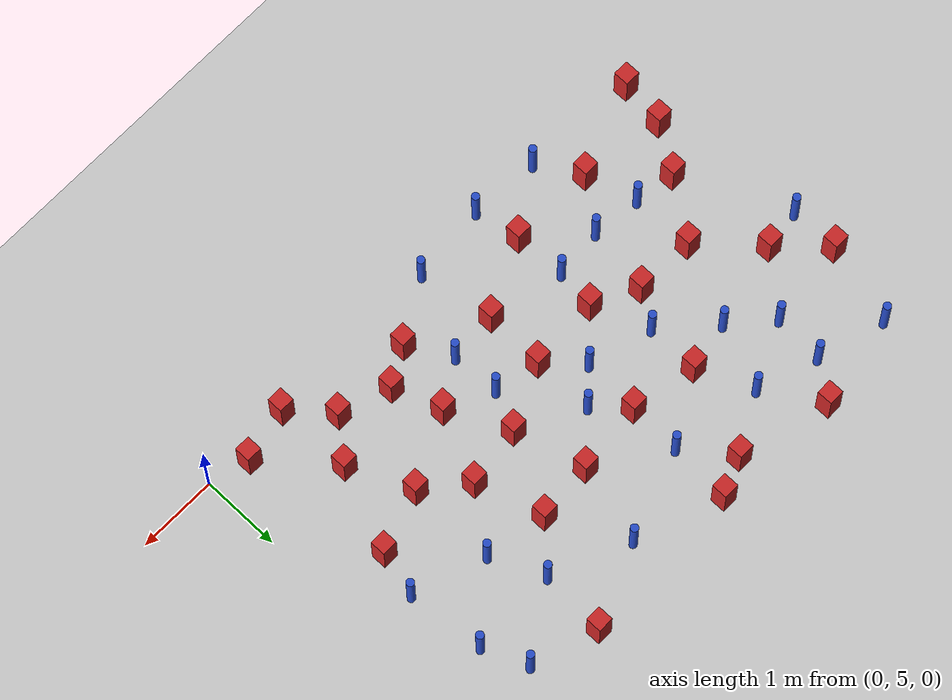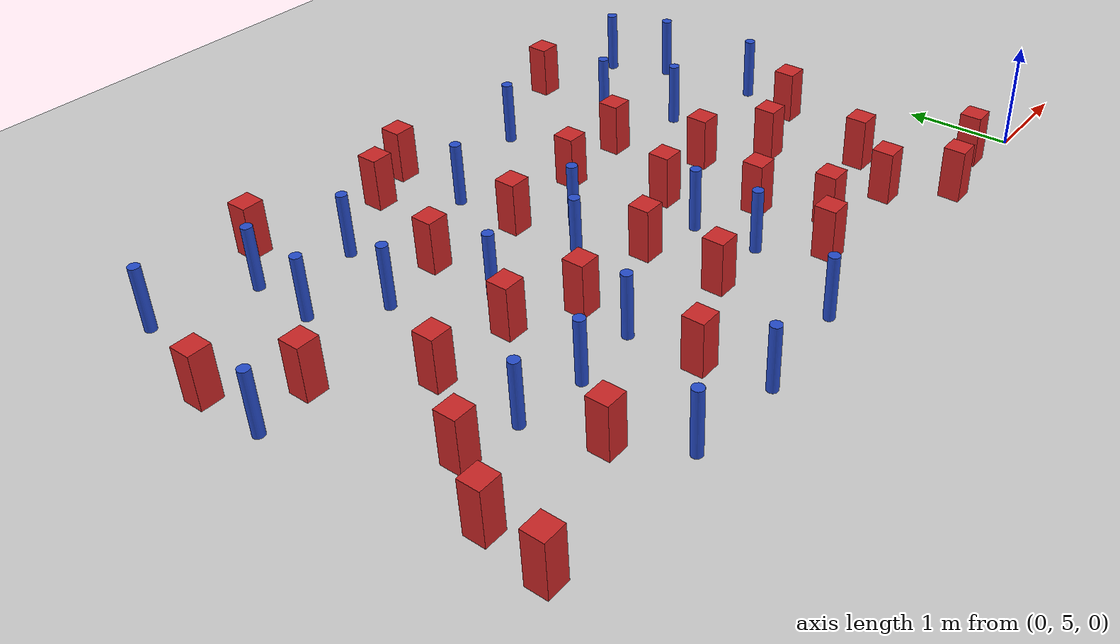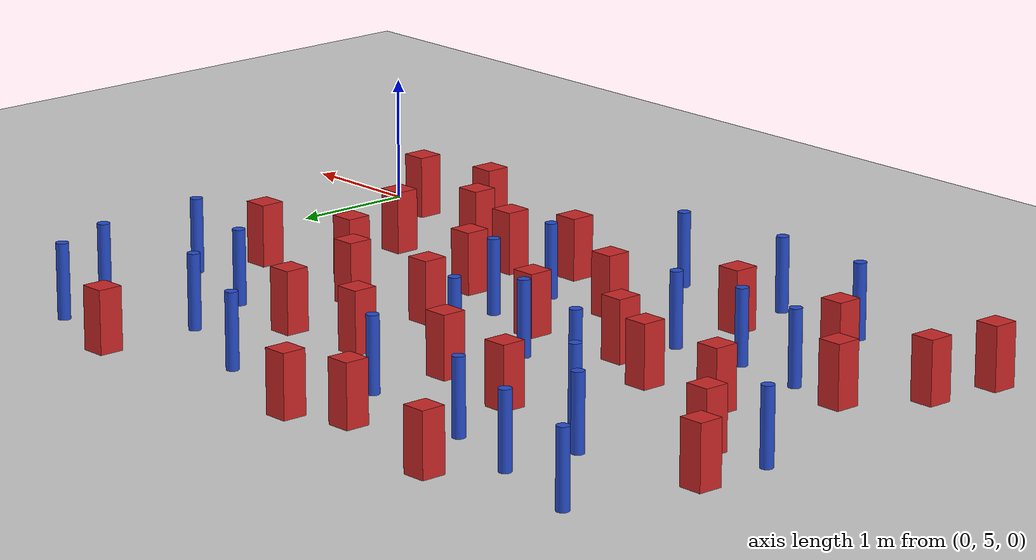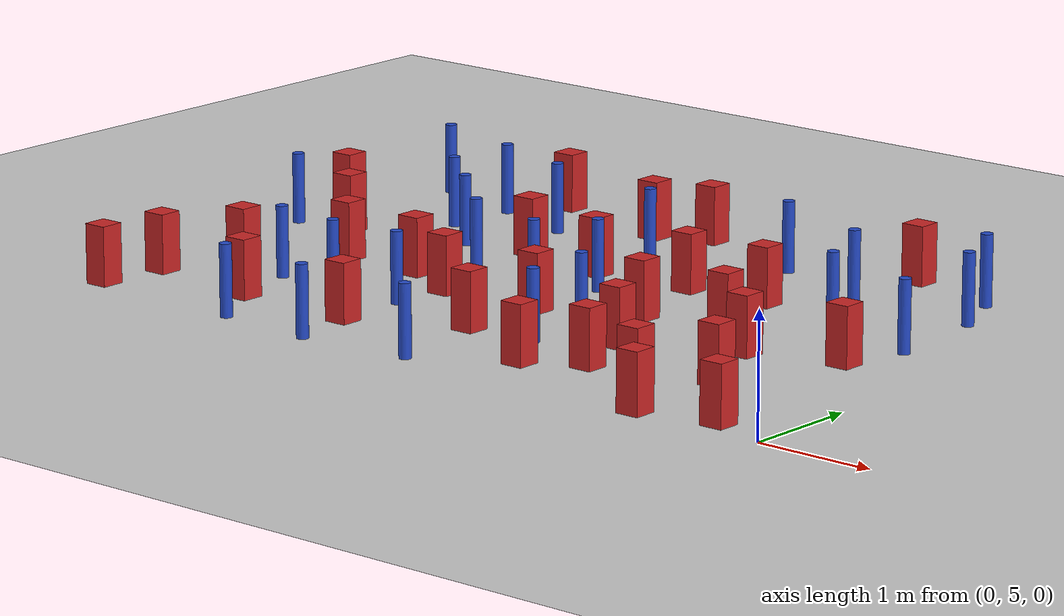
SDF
<sdf version="1.6">
 <world name="default">
  <model name="ground_plane">
   <static>1</static>
   <link name="link">
    <collision name="collision">
     <geometry><plane><normal>0 0 1</normal><size>100 100</size></plane></geometry>
     <surface><friction><ode><mu>100</mu><mu2>50</mu2></ode></friction></surface>
    </collision>
    <visual name="visual">
     <cast_shadows>0</cast_shadows>
     <geometry><plane><normal>0 0 1</normal><size>100 100</size></plane></geometry>
     <material>
      <ambient>1.0 1.0 1.0 1.0</ambient>
      <diffuse>0.8 0.8 0.8 1.0</diffuse>
      <specular>0.01 0.01 0.01 1.000000</specular>
     </material>
    </visual>
   </link>
  </model>
  <model name="square_post_obstacle5">
   <static>true</static>
   <pose>-2.20192147459 5.721006857 -4.36207812815e-07 3.75137919937e-06 9.77721102514e-07 2.47381364184e-05</pose>
   <link name="link">
    <pose>0 0 0.25 0 -0 0</pose>
    <inertial>
     <mass>100</mass>
     <inertia>
      <ixx>0.166667</ixx>
      <ixy>0</ixy>
      <ixz>0</ixz>
      <iyy>0.166667</iyy>
      <iyz>0</iyz>
      <izz>0.166667</izz>
     </inertia>
    </inertial>
    <collision name="collision"><geometry><box><size>.2 .2 .5</size></box></geometry></collision>
    <visual name="visual">
     <geometry><box><size>.2 .2 .5</size></box></geometry>
     <material>
      <script><name>Gazebo/Red</name><uri>file://media/materials/scripts/gazebo.material</uri></script>
     </material>
    </visual>
   </link>
  </model>
  <model name="square_post_obstacle11">
   <static>true</static>
   <pose>-0.495204404261 5.16524390916 -4.36207812815e-07 3.75137919937e-06 9.77721102514e-07 2.47381364184e-05</pose>
   <link name="link">
    <pose>0 0 0.25 0 -0 0</pose>
    <inertial>
     <mass>100</mass>
     <inertia>
      <ixx>0.166667</ixx>
      <ixy>0</ixy>
      <ixz>0</ixz>
      <iyy>0.166667</iyy>
      <iyz>0</iyz>
      <izz>0.166667</izz>
     </inertia>
    </inertial>
    <collision name="collision"><geometry><box><size>.2 .2 .5</size></box></geometry></collision>
    <visual name="visual">
     <geometry><box><size>.2 .2 .5</size></box></geometry>
     <material>
      <script><name>Gazebo/Red</name><uri>file://media/materials/scripts/gazebo.material</uri></script>
     </material>
    </visual>
   </link>
  </model>
  <model name="pole_obstacle16">
   <static>true</static>
   <pose>-3.42183137124 5.0093323636 -3.09024884848e-07 -7.19054271903e-07 -2.11315075193e-07 -1.93935509285e-07</pose>
   <link name="link">
    <pose>0 0 0.3 0 -0 0</pose>
    <inertial>
     <mass>1</mass>
     <inertia><ixx>0.145833</ixx><ixy>0</ixy><ixz>0</ixz><iyy>0.145833</iyy><iyz>0</iyz><izz>0.125</izz></inertia>
    </inertial>
    <collision name="collision">
     <geometry><cylinder><radius>0.05</radius><length>.6</length></cylinder></geometry>
    </collision>
    <visual name="visual">
     <geometry><cylinder><radius>0.05</radius><length>.6</length></cylinder></geometry>
     <material>
      <script><name>Gazebo/Blue</name><uri>file://media/materials/scripts/gazebo.material</uri></script>
     </material>
    </visual>
   </link>
  </model>
  <model name="square_post_obstacle14">
   <static>true</static>
   <pose>-1.17352878662 5.99044738628 -4.36207812815e-07 3.75137919937e-06 9.77721102514e-07 2.47381364184e-05</pose>
   <link name="link">
    <pose>0 0 0.25 0 -0 0</pose>
    <inertial>
     <mass>100</mass>
     <inertia>
      <ixx>0.166667</ixx>
      <ixy>0</ixy>
      <ixz>0</ixz>
      <iyy>0.166667</iyy>
      <iyz>0</iyz>
      <izz>0.166667</izz>
     </inertia>
    </inertial>
    <collision name="collision"><geometry><box><size>.2 .2 .5</size></box></geometry></collision>
    <visual name="visual">
     <geometry><box><size>.2 .2 .5</size></box></geometry>
     <material>
      <script><name>Gazebo/Red</name><uri>file://media/materials/scripts/gazebo.material</uri></script>
     </material>
    </visual>
   </link>
  </model>
  <model name="square_post_obstacle42">
   <static>true</static>
   <pose>-2.29299157943 8.01545349763 -4.36207812815e-07 3.75137919937e-06 9.77721102514e-07 2.47381364184e-05</pose>
   <link name="link">
    <pose>0 0 0.25 0 -0 0</pose>
    <inertial>
     <mass>100</mass>
     <inertia>
      <ixx>0.166667</ixx>
      <ixy>0</ixy>
      <ixz>0</ixz>
      <iyy>0.166667</iyy>
      <iyz>0</iyz>
      <izz>0.166667</izz>
     </inertia>
    </inertial>
    <collision name="collision"><geometry><box><size>.2 .2 .5</size></box></geometry></collision>
    <visual name="visual">
     <geometry><box><size>.2 .2 .5</size></box></geometry>
     <material>
      <script><name>Gazebo/Red</name><uri>file://media/materials/scripts/gazebo.material</uri></script>
     </material>
    </visual>
   </link>
  </model>
  <model name="square_post_obstacle43">
   <static>true</static>
   <pose>-1.75919278025 9.35160729567 -4.36207812815e-07 3.75137919937e-06 9.77721102514e-07 2.47381364184e-05</pose>
   <link name="link">
    <pose>0 0 0.25 0 -0 0</pose>
    <inertial>
     <mass>100</mass>
     <inertia>
      <ixx>0.166667</ixx>
      <ixy>0</ixy>
      <ixz>0</ixz>
      <iyy>0.166667</iyy>
      <iyz>0</iyz>
      <izz>0.166667</izz>
     </inertia>
    </inertial>
    <collision name="collision"><geometry><box><size>.2 .2 .5</size></box></geometry></collision>
    <visual name="visual">
     <geometry><box><size>.2 .2 .5</size></box></geometry>
     <material>
      <script><name>Gazebo/Red</name><uri>file://media/materials/scripts/gazebo.material</uri></script>
     </material>
    </visual>
   </link>
  </model>
  <model name="square_post_obstacle46">
   <static>true</static>
   <pose>-6.40927936074 7.64171627701 -4.36207812815e-07 3.75137919937e-06 9.77721102514e-07 2.47381364184e-05</pose>
   <link name="link">
    <pose>0 0 0.25 0 -0 0</pose>
    <inertial>
     <mass>100</mass>
     <inertia>
      <ixx>0.166667</ixx>
      <ixy>0</ixy>
      <ixz>0</ixz>
      <iyy>0.166667</iyy>
      <iyz>0</iyz>
      <izz>0.166667</izz>
     </inertia>
    </inertial>
    <collision name="collision"><geometry><box><size>.2 .2 .5</size></box></geometry></collision>
    <visual name="visual">
     <geometry><box><size>.2 .2 .5</size></box></geometry>
     <material>
      <script><name>Gazebo/Red</name><uri>file://media/materials/scripts/gazebo.material</uri></script>
     </material>
    </visual>
   </link>
  </model>
  <model name="pole_obstacle62">
   <static>true</static>
   <pose>-0.603730077814 7.57928472812 -3.09024884793e-07 -7.19054271912e-07 -2.11315075129e-07 -1.93935509261e-07</pose>
   <link name="link">
    <pose>0 0 0.3 0 -0 0</pose>
    <inertial>
     <mass>1</mass>
     <inertia><ixx>0.145833</ixx><ixy>0</ixy><ixz>0</ixz><iyy>0.145833</iyy><iyz>0</iyz><izz>0.125</izz></inertia>
    </inertial>
    <collision name="collision">
     <geometry><cylinder><radius>0.05</radius><length>.6</length></cylinder></geometry>
    </collision>
    <visual name="visual">
     <geometry><cylinder><radius>0.05</radius><length>.6</length></cylinder></geometry>
     <material>
      <script><name>Gazebo/Blue</name><uri>file://media/materials/scripts/gazebo.material</uri></script>
     </material>
    </visual>
   </link>
  </model>
  <model name="square_post_obstacle48">
   <static>true</static>
   <pose>-2.03172773621 7.1834010744 -4.36207812815e-07 3.75137919937e-06 9.77721102514e-07 2.47381364184e-05</pose>
   <link name="link">
    <pose>0 0 0.25 0 -0 0</pose>
    <inertial>
     <mass>100</mass>
     <inertia>
      <ixx>0.166667</ixx>
      <ixy>0</ixy>
      <ixz>0</ixz>
      <iyy>0.166667</iyy>
      <iyz>0</iyz>
      <izz>0.166667</izz>
     </inertia>
    </inertial>
    <collision name="collision"><geometry><box><size>.2 .2 .5</size></box></geometry></collision>
    <visual name="visual">
     <geometry><box><size>.2 .2 .5</size></box></geometry>
     <material>
      <script><name>Gazebo/Red</name><uri>file://media/materials/scripts/gazebo.material</uri></script>
     </material>
    </visual>
   </link>
  </model>
  <model name="pole_obstacle65">
   <static>true</static>
   <pose>-3.88668342718 8.53145276634 -3.09024884848e-07 -7.19054271902e-07 -2.11315075199e-07 -1.93935509286e-07</pose>
   <link name="link">
    <pose>0 0 0.3 0 -0 0</pose>
    <inertial>
     <mass>1</mass>
     <inertia><ixx>0.145833</ixx><ixy>0</ixy><ixz>0</ixz><iyy>0.145833</iyy><iyz>0</iyz><izz>0.125</izz></inertia>
    </inertial>
    <collision name="collision">
     <geometry><cylinder><radius>0.05</radius><length>.6</length></cylinder></geometry>
    </collision>
    <visual name="visual">
     <geometry><cylinder><radius>0.05</radius><length>.6</length></cylinder></geometry>
     <material>
      <script><name>Gazebo/Blue</name><uri>file://media/materials/scripts/gazebo.material</uri></script>
     </material>
    </visual>
   </link>
  </model>
  <model name="pole_obstacle68">
   <static>true</static>
   <pose>-5.28599103161 4.98297064416 -3.09024884793e-07 -7.19054271911e-07 -2.1131507516e-07 -1.93935509277e-07</pose>
   <link name="link">
    <pose>0 0 0.3 0 -0 0</pose>
    <inertial>
     <mass>1</mass>
     <inertia><ixx>0.145833</ixx><ixy>0</ixy><ixz>0</ixz><iyy>0.145833</iyy><iyz>0</iyz><izz>0.125</izz></inertia>
    </inertial>
    <collision name="collision">
     <geometry><cylinder><radius>0.05</radius><length>.6</length></cylinder></geometry>
    </collision>
    <visual name="visual">
     <geometry><cylinder><radius>0.05</radius><length>.6</length></cylinder></geometry>
     <material>
      <script><name>Gazebo/Blue</name><uri>file://media/materials/scripts/gazebo.material</uri></script>
     </material>
    </visual>
   </link>
  </model>
  <model name="pole_obstacle71">
   <static>true</static>
   <pose>-1.79948838187 8.53098271979 -3.09024884793e-07 -7.19054271912e-07 -2.1131507515e-07 -1.93935509273e-07</pose>
   <link name="link">
    <pose>0 0 0.3 0 -0 0</pose>
    <inertial>
     <mass>1</mass>
     <inertia><ixx>0.145833</ixx><ixy>0</ixy><ixz>0</ixz><iyy>0.145833</iyy><iyz>0</iyz><izz>0.125</izz></inertia>
    </inertial>
    <collision name="collision">
     <geometry><cylinder><radius>0.05</radius><length>.6</length></cylinder></geometry>
    </collision>
    <visual name="visual">
     <geometry><cylinder><radius>0.05</radius><length>.6</length></cylinder></geometry>
     <material>
      <script><name>Gazebo/Blue</name><uri>file://media/materials/scripts/gazebo.material</uri></script>
     </material>
    </visual>
   </link>
  </model>
  <model name="pole_obstacle80">
   <static>true</static>
   <pose>-1.51343600492 7.87549931744 -3.09024884793e-07 -7.19054271912e-07 -2.11315075134e-07 -1.93935509265e-07</pose>
   <link name="link">
    <pose>0 0 0.3 0 -0 0</pose>
    <inertial>
     <mass>1</mass>
     <inertia><ixx>0.145833</ixx><ixy>0</ixy><ixz>0</ixz><iyy>0.145833</iyy><iyz>0</iyz><izz>0.125</izz></inertia>
    </inertial>
    <collision name="collision">
     <geometry><cylinder><radius>0.05</radius><length>.6</length></cylinder></geometry>
    </collision>
    <visual name="visual">
     <geometry><cylinder><radius>0.05</radius><length>.6</length></cylinder></geometry>
     <material>
      <script><name>Gazebo/Blue</name><uri>file://media/materials/scripts/gazebo.material</uri></script>
     </material>
    </visual>
   </link>
  </model>
  <model name="square_post_obstacle69">
   <static>true</static>
   <pose>-3.59232244224 5.94449331284 -4.36207812815e-07 3.75137919937e-06 9.77721102514e-07 2.47381364184e-05</pose>
   <link name="link">
    <pose>0 0 0.25 0 -0 0</pose>
    <inertial>
     <mass>100</mass>
     <inertia>
      <ixx>0.166667</ixx>
      <ixy>0</ixy>
      <ixz>0</ixz>
      <iyy>0.166667</iyy>
      <iyz>0</iyz>
      <izz>0.166667</izz>
     </inertia>
    </inertial>
    <collision name="collision"><geometry><box><size>.2 .2 .5</size></box></geometry></collision>
    <visual name="visual">
     <geometry><box><size>.2 .2 .5</size></box></geometry>
     <material>
      <script><name>Gazebo/Red</name><uri>file://media/materials/scripts/gazebo.material</uri></script>
     </material>
    </visual>
   </link>
  </model>
  <model name="pole_obstacle84">
   <static>true</static>
   <pose>-0.923422182572 9.10104617617 -3.09024884793e-07 -7.19054271911e-07 -2.11315075158e-07 -1.93935509277e-07</pose>
   <link name="link">
    <pose>0 0 0.3 0 -0 0</pose>
    <inertial>
     <mass>1</mass>
     <inertia><ixx>0.145833</ixx><ixy>0</ixy><ixz>0</ixz><iyy>0.145833</iyy><iyz>0</iyz><izz>0.125</izz></inertia>
    </inertial>
    <collision name="collision">
     <geometry><cylinder><radius>0.05</radius><length>.6</length></cylinder></geometry>
    </collision>
    <visual name="visual">
     <geometry><cylinder><radius>0.05</radius><length>.6</length></cylinder></geometry>
     <material>
      <script><name>Gazebo/Blue</name><uri>file://media/materials/scripts/gazebo.material</uri></script>
     </material>
    </visual>
   </link>
  </model>
  <model name="pole_obstacle85">
   <static>true</static>
   <pose>-3.94880501033 7.13750665205 -3.09024884848e-07 -7.19054271903e-07 -2.11315075193e-07 -1.93935509285e-07</pose>
   <link name="link">
    <pose>0 0 0.3 0 -0 0</pose>
    <inertial>
     <mass>1</mass>
     <inertia><ixx>0.145833</ixx><ixy>0</ixy><ixz>0</ixz><iyy>0.145833</iyy><iyz>0</iyz><izz>0.125</izz></inertia>
    </inertial>
    <collision name="collision">
     <geometry><cylinder><radius>0.05</radius><length>.6</length></cylinder></geometry>
    </collision>
    <visual name="visual">
     <geometry><cylinder><radius>0.05</radius><length>.6</length></cylinder></geometry>
     <material>
      <script><name>Gazebo/Blue</name><uri>file://media/materials/scripts/gazebo.material</uri></script>
     </material>
    </visual>
   </link>
  </model>
  <model name="square_post_obstacle75">
   <static>true</static>
   <pose>-4.47089797505 6.65379932418 -4.36207812815e-07 3.75137919937e-06 9.77721102514e-07 2.47381364184e-05</pose>
   <link name="link">
    <pose>0 0 0.25 0 -0 0</pose>
    <inertial>
     <mass>100</mass>
     <inertia>
      <ixx>0.166667</ixx>
      <ixy>0</ixy>
      <ixz>0</ixz>
      <iyy>0.166667</iyy>
      <iyz>0</iyz>
      <izz>0.166667</izz>
     </inertia>
    </inertial>
    <collision name="collision"><geometry><box><size>.2 .2 .5</size></box></geometry></collision>
    <visual name="visual">
     <geometry><box><size>.2 .2 .5</size></box></geometry>
     <material>
      <script><name>Gazebo/Red</name><uri>file://media/materials/scripts/gazebo.material</uri></script>
     </material>
    </visual>
   </link>
  </model>
  <model name="square_post_obstacle79">
   <static>true</static>
   <pose>-6.29694676911 6.23619996367 -4.36207812815e-07 3.75137919937e-06 9.77721102514e-07 2.47381364184e-05</pose>
   <link name="link">
    <pose>0 0 0.25 0 -0 0</pose>
    <inertial>
     <mass>100</mass>
     <inertia>
      <ixx>0.166667</ixx>
      <ixy>0</ixy>
      <ixz>0</ixz>
      <iyy>0.166667</iyy>
      <iyz>0</iyz>
      <izz>0.166667</izz>
     </inertia>
    </inertial>
    <collision name="collision"><geometry><box><size>.2 .2 .5</size></box></geometry></collision>
    <visual name="visual">
     <geometry><box><size>.2 .2 .5</size></box></geometry>
     <material>
      <script><name>Gazebo/Red</name><uri>file://media/materials/scripts/gazebo.material</uri></script>
     </material>
    </visual>
   </link>
  </model>
  <model name="square_post_obstacle81">
   <static>true</static>
   <pose>-4.5120306328 5.49650588585 -4.36207812815e-07 3.75137919937e-06 9.77721102514e-07 2.47381364184e-05</pose>
   <link name="link">
    <pose>0 0 0.25 0 -0 0</pose>
    <inertial>
     <mass>100</mass>
     <inertia>
      <ixx>0.166667</ixx>
      <ixy>0</ixy>
      <ixz>0</ixz>
      <iyy>0.166667</iyy>
      <iyz>0</iyz>
      <izz>0.166667</izz>
     </inertia>
    </inertial>
    <collision name="collision"><geometry><box><size>.2 .2 .5</size></box></geometry></collision>
    <visual name="visual">
     <geometry><box><size>.2 .2 .5</size></box></geometry>
     <material>
      <script><name>Gazebo/Red</name><uri>file://media/materials/scripts/gazebo.material</uri></script>
     </material>
    </visual>
   </link>
  </model>
  <model name="square_post_obstacle88">
   <static>true</static>
   <pose>-5.4745663574 9.4051353348 -4.36207812815e-07 3.75137919937e-06 9.77721102514e-07 2.47381364184e-05</pose>
   <link name="link">
    <pose>0 0 0.25 0 -0 0</pose>
    <inertial>
     <mass>100</mass>
     <inertia>
      <ixx>0.166667</ixx>
      <ixy>0</ixy>
      <ixz>0</ixz>
      <iyy>0.166667</iyy>
      <iyz>0</iyz>
      <izz>0.166667</izz>
     </inertia>
    </inertial>
    <collision name="collision"><geometry><box><size>.2 .2 .5</size></box></geometry></collision>
    <visual name="visual">
     <geometry><box><size>.2 .2 .5</size></box></geometry>
     <material>
      <script><name>Gazebo/Red</name><uri>file://media/materials/scripts/gazebo.material</uri></script>
     </material>
    </visual>
   </link>
  </model>
  <model name="square_post_obstacle89">
   <static>true</static>
   <pose>-6.74765381046 5.08534937737 -4.36207812815e-07 3.75137919937e-06 9.77721102514e-07 2.47381364184e-05</pose>
   <link name="link">
    <pose>0 0 0.25 0 -0 0</pose>
    <inertial>
     <mass>100</mass>
     <inertia>
      <ixx>0.166667</ixx>
      <ixy>0</ixy>
      <ixz>0</ixz>
      <iyy>0.166667</iyy>
      <iyz>0</iyz>
      <izz>0.166667</izz>
     </inertia>
    </inertial>
    <collision name="collision"><geometry><box><size>.2 .2 .5</size></box></geometry></collision>
    <visual name="visual">
     <geometry><box><size>.2 .2 .5</size></box></geometry>
     <material>
      <script><name>Gazebo/Red</name><uri>file://media/materials/scripts/gazebo.material</uri></script>
     </material>
    </visual>
   </link>
  </model>
  <model name="pole_obstacle98">
   <static>true</static>
   <pose>-0.699616221514 8.5493312971 -3.09024884793e-07 -7.19054271911e-07 -2.11315075158e-07 -1.93935509277e-07</pose>
   <link name="link">
    <pose>0 0 0.3 0 -0 0</pose>
    <inertial>
     <mass>1</mass>
     <inertia><ixx>0.145833</ixx><ixy>0</ixy><ixz>0</ixz><iyy>0.145833</iyy><iyz>0</iyz><izz>0.125</izz></inertia>
    </inertial>
    <collision name="collision">
     <geometry><cylinder><radius>0.05</radius><length>.6</length></cylinder></geometry>
    </collision>
    <visual name="visual">
     <geometry><cylinder><radius>0.05</radius><length>.6</length></cylinder></geometry>
     <material>
      <script><name>Gazebo/Blue</name><uri>file://media/materials/scripts/gazebo.material</uri></script>
     </material>
    </visual>
   </link>
  </model>
  <model name="pole_obstacle99">
   <static>true</static>
   <pose>-2.76573472875 8.93165697574 -3.09024884848e-07 -7.19054271902e-07 -2.11315075199e-07 -1.93935509286e-07</pose>
   <link name="link">
    <pose>0 0 0.3 0 -0 0</pose>
    <inertial>
     <mass>1</mass>
     <inertia><ixx>0.145833</ixx><ixy>0</ixy><ixz>0</ixz><iyy>0.145833</iyy><iyz>0</iyz><izz>0.125</izz></inertia>
    </inertial>
    <collision name="collision">
     <geometry><cylinder><radius>0.05</radius><length>.6</length></cylinder></geometry>
    </collision>
    <visual name="visual">
     <geometry><cylinder><radius>0.05</radius><length>.6</length></cylinder></geometry>
     <material>
      <script><name>Gazebo/Blue</name><uri>file://media/materials/scripts/gazebo.material</uri></script>
     </material>
    </visual>
   </link>
  </model>
  <model name="square_post_obstacle94">
   <static>true</static>
   <pose>-2.66271141788 5.46080203717 -4.36207812815e-07 3.75137919937e-06 9.77721102514e-07 2.47381364184e-05</pose>
   <link name="link">
    <pose>0 0 0.25 0 -0 0</pose>
    <inertial>
     <mass>100</mass>
     <inertia>
      <ixx>0.166667</ixx>
      <ixy>0</ixy>
      <ixz>0</ixz>
      <iyy>0.166667</iyy>
      <iyz>0</iyz>
      <izz>0.166667</izz>
     </inertia>
    </inertial>
    <collision name="collision"><geometry><box><size>.2 .2 .5</size></box></geometry></collision>
    <visual name="visual">
     <geometry><box><size>.2 .2 .5</size></box></geometry>
     <material>
      <script><name>Gazebo/Red</name><uri>file://media/materials/scripts/gazebo.material</uri></script>
     </material>
    </visual>
   </link>
  </model>
  <model name="square_post_obstacle98">
   <static>true</static>
   <pose>-3.90727172488 7.86459307256 -4.36207812815e-07 3.75137919937e-06 9.77721102514e-07 2.47381364184e-05</pose>
   <link name="link">
    <pose>0 0 0.25 0 -0 0</pose>
    <inertial>
     <mass>100</mass>
     <inertia>
      <ixx>0.166667</ixx>
      <ixy>0</ixy>
      <ixz>0</ixz>
      <iyy>0.166667</iyy>
      <iyz>0</iyz>
      <izz>0.166667</izz>
     </inertia>
    </inertial>
    <collision name="collision"><geometry><box><size>.2 .2 .5</size></box></geometry></collision>
    <visual name="visual">
     <geometry><box><size>.2 .2 .5</size></box></geometry>
     <material>
      <script><name>Gazebo/Red</name><uri>file://media/materials/scripts/gazebo.material</uri></script>
     </material>
    </visual>
   </link>
  </model>
  <model name="pole_obstacle104">
   <static>true</static>
   <pose>-3.5655641225 7.478234766 -3.09024884848e-07 -7.19054271903e-07 -2.11315075193e-07 -1.93935509285e-07</pose>
   <link name="link">
    <pose>0 0 0.3 0 -0 0</pose>
    <inertial>
     <mass>1</mass>
     <inertia><ixx>0.145833</ixx><ixy>0</ixy><ixz>0</ixz><iyy>0.145833</iyy><iyz>0</iyz><izz>0.125</izz></inertia>
    </inertial>
    <collision name="collision">
     <geometry><cylinder><radius>0.05</radius><length>.6</length></cylinder></geometry>
    </collision>
    <visual name="visual">
     <geometry><cylinder><radius>0.05</radius><length>.6</length></cylinder></geometry>
     <material>
      <script><name>Gazebo/Blue</name><uri>file://media/materials/scripts/gazebo.material</uri></script>
     </material>
    </visual>
   </link>
  </model>
  <model name="pole_obstacle106">
   <static>true</static>
   <pose>-5.83890077055 8.32497746466 -3.09024884793e-07 -7.19054271912e-07 -2.1131507513e-07 -1.93935509261e-07</pose>
   <link name="link">
    <pose>0 0 0.3 0 -0 0</pose>
    <inertial>
     <mass>1</mass>
     <inertia><ixx>0.145833</ixx><ixy>0</ixy><ixz>0</ixz><iyy>0.145833</iyy><iyz>0</iyz><izz>0.125</izz></inertia>
    </inertial>
    <collision name="collision">
     <geometry><cylinder><radius>0.05</radius><length>.6</length></cylinder></geometry>
    </collision>
    <visual name="visual">
     <geometry><cylinder><radius>0.05</radius><length>.6</length></cylinder></geometry>
     <material>
      <script><name>Gazebo/Blue</name><uri>file://media/materials/scripts/gazebo.material</uri></script>
     </material>
    </visual>
   </link>
  </model>
  <model name="square_post_obstacle102">
   <static>true</static>
   <pose>-5.60339465249 5.51341636166 -4.36207812815e-07 3.75137919937e-06 9.77721102514e-07 2.47381364184e-05</pose>
   <link name="link">
    <pose>0 0 0.25 0 -0 0</pose>
    <inertial>
     <mass>100</mass>
     <inertia>
      <ixx>0.166667</ixx>
      <ixy>0</ixy>
      <ixz>0</ixz>
      <iyy>0.166667</iyy>
      <iyz>0</iyz>
      <izz>0.166667</izz>
     </inertia>
    </inertial>
    <collision name="collision"><geometry><box><size>.2 .2 .5</size></box></geometry></collision>
    <visual name="visual">
     <geometry><box><size>.2 .2 .5</size></box></geometry>
     <material>
      <script><name>Gazebo/Red</name><uri>file://media/materials/scripts/gazebo.material</uri></script>
     </material>
    </visual>
   </link>
  </model>
  <model name="square_post_obstacle105">
   <static>true</static>
   <pose>-3.5597850235 6.70554260327 -4.36207812815e-07 3.75137919937e-06 9.77721102514e-07 2.47381364184e-05</pose>
   <link name="link">
    <pose>0 0 0.25 0 -0 0</pose>
    <inertial>
     <mass>100</mass>
     <inertia>
      <ixx>0.166667</ixx>
      <ixy>0</ixy>
      <ixz>0</ixz>
      <iyy>0.166667</iyy>
      <iyz>0</iyz>
      <izz>0.166667</izz>
     </inertia>
    </inertial>
    <collision name="collision"><geometry><box><size>.2 .2 .5</size></box></geometry></collision>
    <visual name="visual">
     <geometry><box><size>.2 .2 .5</size></box></geometry>
     <material>
      <script><name>Gazebo/Red</name><uri>file://media/materials/scripts/gazebo.material</uri></script>
     </material>
    </visual>
   </link>
  </model>
  <model name="square_post_obstacle111">
   <static>true</static>
   <pose>-1.15939917132 5.01532822231 -4.36207812815e-07 3.75137919937e-06 9.77721102514e-07 2.47381364184e-05</pose>
   <link name="link">
    <pose>0 0 0.25 0 -0 0</pose>
    <inertial>
     <mass>100</mass>
     <inertia>
      <ixx>0.166667</ixx>
      <ixy>0</ixy>
      <ixz>0</ixz>
      <iyy>0.166667</iyy>
      <iyz>0</iyz>
      <izz>0.166667</izz>
     </inertia>
    </inertial>
    <collision name="collision"><geometry><box><size>.2 .2 .5</size></box></geometry></collision>
    <visual name="visual">
     <geometry><box><size>.2 .2 .5</size></box></geometry>
     <material>
      <script><name>Gazebo/Red</name><uri>file://media/materials/scripts/gazebo.material</uri></script>
     </material>
    </visual>
   </link>
  </model>
  <model name="square_post_obstacle115">
   <static>true</static>
   <pose>-5.78997772301 6.94734121399 -4.36207812815e-07 3.75137919937e-06 9.77721102514e-07 2.47381364184e-05</pose>
   <link name="link">
    <pose>0 0 0.25 0 -0 0</pose>
    <inertial>
     <mass>100</mass>
     <inertia>
      <ixx>0.166667</ixx>
      <ixy>0</ixy>
      <ixz>0</ixz>
      <iyy>0.166667</iyy>
      <iyz>0</iyz>
      <izz>0.166667</izz>
     </inertia>
    </inertial>
    <collision name="collision"><geometry><box><size>.2 .2 .5</size></box></geometry></collision>
    <visual name="visual">
     <geometry><box><size>.2 .2 .5</size></box></geometry>
     <material>
      <script><name>Gazebo/Red</name><uri>file://media/materials/scripts/gazebo.material</uri></script>
     </material>
    </visual>
   </link>
  </model>
  <model name="pole_obstacle116">
   <static>true</static>
   <pose>-5.03315133841 8.71242743097 -3.09024884793e-07 -7.19054271912e-07 -2.1131507513e-07 -1.93935509261e-07</pose>
   <link name="link">
    <pose>0 0 0.3 0 -0 0</pose>
    <inertial>
     <mass>1</mass>
     <inertia><ixx>0.145833</ixx><ixy>0</ixy><ixz>0</ixz><iyy>0.145833</iyy><iyz>0</iyz><izz>0.125</izz></inertia>
    </inertial>
    <collision name="collision">
     <geometry><cylinder><radius>0.05</radius><length>.6</length></cylinder></geometry>
    </collision>
    <visual name="visual">
     <geometry><cylinder><radius>0.05</radius><length>.6</length></cylinder></geometry>
     <material>
      <script><name>Gazebo/Blue</name><uri>file://media/materials/scripts/gazebo.material</uri></script>
     </material>
    </visual>
   </link>
  </model>
  <model name="pole_obstacle118">
   <static>true</static>
   <pose>-2.99394655041 6.59206965698 -3.09024884793e-07 -7.19054271912e-07 -2.11315075134e-07 -1.93935509266e-07</pose>
   <link name="link">
    <pose>0 0 0.3 0 -0 0</pose>
    <inertial>
     <mass>1</mass>
     <inertia><ixx>0.145833</ixx><ixy>0</ixy><ixz>0</ixz><iyy>0.145833</iyy><iyz>0</iyz><izz>0.125</izz></inertia>
    </inertial>
    <collision name="collision">
     <geometry><cylinder><radius>0.05</radius><length>.6</length></cylinder></geometry>
    </collision>
    <visual name="visual">
     <geometry><cylinder><radius>0.05</radius><length>.6</length></cylinder></geometry>
     <material>
      <script><name>Gazebo/Blue</name><uri>file://media/materials/scripts/gazebo.material</uri></script>
     </material>
    </visual>
   </link>
  </model>
  <model name="square_post_obstacle119">
   <static>true</static>
   <pose>-6.6674602277 5.67227917463 -4.36207812815e-07 3.75137919937e-06 9.77721102514e-07 2.47381364184e-05</pose>
   <link name="link">
    <pose>0 0 0.25 0 -0 0</pose>
    <inertial>
     <mass>100</mass>
     <inertia>
      <ixx>0.166667</ixx>
      <ixy>0</ixy>
      <ixz>0</ixz>
      <iyy>0.166667</iyy>
      <iyz>0</iyz>
      <izz>0.166667</izz>
     </inertia>
    </inertial>
    <collision name="collision"><geometry><box><size>.2 .2 .5</size></box></geometry></collision>
    <visual name="visual">
     <geometry><box><size>.2 .2 .5</size></box></geometry>
     <material>
      <script><name>Gazebo/Red</name><uri>file://media/materials/scripts/gazebo.material</uri></script>
     </material>
    </visual>
   </link>
  </model>
  <model name="square_post_obstacle121">
   <static>true</static>
   <pose>-4.31141618543 9.11050987024 -4.36207812815e-07 3.75137919937e-06 9.77721102514e-07 2.47381364184e-05</pose>
   <link name="link">
    <pose>0 0 0.25 0 -0 0</pose>
    <inertial>
     <mass>100</mass>
     <inertia>
      <ixx>0.166667</ixx>
      <ixy>0</ixy>
      <ixz>0</ixz>
      <iyy>0.166667</iyy>
      <iyz>0</iyz>
      <izz>0.166667</izz>
     </inertia>
    </inertial>
    <collision name="collision"><geometry><box><size>.2 .2 .5</size></box></geometry></collision>
    <visual name="visual">
     <geometry><box><size>.2 .2 .5</size></box></geometry>
     <material>
      <script><name>Gazebo/Red</name><uri>file://media/materials/scripts/gazebo.material</uri></script>
     </material>
    </visual>
   </link>
  </model>
  <model name="pole_obstacle125">
   <static>true</static>
   <pose>-5.16668194725 6.09168045924 -3.09024884793e-07 -7.19054271911e-07 -2.1131507516e-07 -1.93935509277e-07</pose>
   <link name="link">
    <pose>0 0 0.3 0 -0 0</pose>
    <inertial>
     <mass>1</mass>
     <inertia><ixx>0.145833</ixx><ixy>0</ixy><ixz>0</ixz><iyy>0.145833</iyy><iyz>0</iyz><izz>0.125</izz></inertia>
    </inertial>
    <collision name="collision">
     <geometry><cylinder><radius>0.05</radius><length>.6</length></cylinder></geometry>
    </collision>
    <visual name="visual">
     <geometry><cylinder><radius>0.05</radius><length>.6</length></cylinder></geometry>
     <material>
      <script><name>Gazebo/Blue</name><uri>file://media/materials/scripts/gazebo.material</uri></script>
     </material>
    </visual>
   </link>
  </model>
  <model name="pole_obstacle127">
   <static>true</static>
   <pose>-2.9690222785 5.98235909168 -3.09024884793e-07 -7.19054271912e-07 -2.11315075134e-07 -1.93935509266e-07</pose>
   <link name="link">
    <pose>0 0 0.3 0 -0 0</pose>
    <inertial>
     <mass>1</mass>
     <inertia><ixx>0.145833</ixx><ixy>0</ixy><ixz>0</ixz><iyy>0.145833</iyy><iyz>0</iyz><izz>0.125</izz></inertia>
    </inertial>
    <collision name="collision">
     <geometry><cylinder><radius>0.05</radius><length>.6</length></cylinder></geometry>
    </collision>
    <visual name="visual">
     <geometry><cylinder><radius>0.05</radius><length>.6</length></cylinder></geometry>
     <material>
      <script><name>Gazebo/Blue</name><uri>file://media/materials/scripts/gazebo.material</uri></script>
     </material>
    </visual>
   </link>
  </model>
  <model name="square_post_obstacle131">
   <static>true</static>
   <pose>-1.51640588164 6.7683684181 -4.36207812815e-07 3.75137919937e-06 9.77721102514e-07 2.47381364184e-05</pose>
   <link name="link">
    <pose>0 0 0.25 0 -0 0</pose>
    <inertial>
     <mass>100</mass>
     <inertia>
      <ixx>0.166667</ixx>
      <ixy>0</ixy>
      <ixz>0</ixz>
      <iyy>0.166667</iyy>
      <iyz>0</iyz>
      <izz>0.166667</izz>
     </inertia>
    </inertial>
    <collision name="collision"><geometry><box><size>.2 .2 .5</size></box></geometry></collision>
    <visual name="visual">
     <geometry><box><size>.2 .2 .5</size></box></geometry>
     <material>
      <script><name>Gazebo/Red</name><uri>file://media/materials/scripts/gazebo.material</uri></script>
     </material>
    </visual>
   </link>
  </model>
  <model name="pole_obstacle140">
   <static>true</static>
   <pose>-5.34944158075 7.90395032767 -3.09024884793e-07 -7.19054271911e-07 -2.1131507516e-07 -1.93935509277e-07</pose>
   <link name="link">
    <pose>0 0 0.3 0 -0 0</pose>
    <inertial>
     <mass>1</mass>
     <inertia><ixx>0.145833</ixx><ixy>0</ixy><ixz>0</ixz><iyy>0.145833</iyy><iyz>0</iyz><izz>0.125</izz></inertia>
    </inertial>
    <collision name="collision">
     <geometry><cylinder><radius>0.05</radius><length>.6</length></cylinder></geometry>
    </collision>
    <visual name="visual">
     <geometry><cylinder><radius>0.05</radius><length>.6</length></cylinder></geometry>
     <material>
      <script><name>Gazebo/Blue</name><uri>file://media/materials/scripts/gazebo.material</uri></script>
     </material>
    </visual>
   </link>
  </model>
  <model name="square_post_obstacle139">
   <static>true</static>
   <pose>-0.755826179381 7.02074912002 -4.36207812815e-07 3.75137919937e-06 9.77721102514e-07 2.47381364184e-05</pose>
   <link name="link">
    <pose>0 0 0.25 0 -0 0</pose>
    <inertial>
     <mass>100</mass>
     <inertia>
      <ixx>0.166667</ixx>
      <ixy>0</ixy>
      <ixz>0</ixz>
      <iyy>0.166667</iyy>
      <iyz>0</iyz>
      <izz>0.166667</izz>
     </inertia>
    </inertial>
    <collision name="collision"><geometry><box><size>.2 .2 .5</size></box></geometry></collision>
    <visual name="visual">
     <geometry><box><size>.2 .2 .5</size></box></geometry>
     <material>
      <script><name>Gazebo/Red</name><uri>file://media/materials/scripts/gazebo.material</uri></script>
     </material>
    </visual>
   </link>
  </model>
  <model name="pole_obstacle149">
   <static>true</static>
   <pose>-6.64769419087 9.1972817931 -3.09024884793e-07 -7.19054271912e-07 -2.1131507513e-07 -1.93935509261e-07</pose>
   <link name="link">
    <pose>0 0 0.3 0 -0 0</pose>
    <inertial>
     <mass>1</mass>
     <inertia><ixx>0.145833</ixx><ixy>0</ixy><ixz>0</ixz><iyy>0.145833</iyy><iyz>0</iyz><izz>0.125</izz></inertia>
    </inertial>
    <collision name="collision">
     <geometry><cylinder><radius>0.05</radius><length>.6</length></cylinder></geometry>
    </collision>
    <visual name="visual">
     <geometry><cylinder><radius>0.05</radius><length>.6</length></cylinder></geometry>
     <material>
      <script><name>Gazebo/Blue</name><uri>file://media/materials/scripts/gazebo.material</uri></script>
     </material>
    </visual>
   </link>
  </model>
  <model name="pole_obstacle157">
   <static>true</static>
   <pose>-4.74973018023 7.35343390757 -3.09024884793e-07 -7.19054271911e-07 -2.1131507516e-07 -1.93935509277e-07</pose>
   <link name="link">
    <pose>0 0 0.3 0 -0 0</pose>
    <inertial>
     <mass>1</mass>
     <inertia><ixx>0.145833</ixx><ixy>0</ixy><ixz>0</ixz><iyy>0.145833</iyy><iyz>0</iyz><izz>0.125</izz></inertia>
    </inertial>
    <collision name="collision">
     <geometry><cylinder><radius>0.05</radius><length>.6</length></cylinder></geometry>
    </collision>
    <visual name="visual">
     <geometry><cylinder><radius>0.05</radius><length>.6</length></cylinder></geometry>
     <material>
      <script><name>Gazebo/Blue</name><uri>file://media/materials/scripts/gazebo.material</uri></script>
     </material>
    </visual>
   </link>
  </model>
  <model name="square_post_obstacle156">
   <static>true</static>
   <pose>-6.91446008186 8.18537237678 -4.36207812815e-07 3.75137919937e-06 9.77721102514e-07 2.47381364184e-05</pose>
   <link name="link">
    <pose>0 0 0.25 0 -0 0</pose>
    <inertial>
     <mass>100</mass>
     <inertia>
      <ixx>0.166667</ixx>
      <ixy>0</ixy>
      <ixz>0</ixz>
      <iyy>0.166667</iyy>
      <iyz>0</iyz>
      <izz>0.166667</izz>
     </inertia>
    </inertial>
    <collision name="collision"><geometry><box><size>.2 .2 .5</size></box></geometry></collision>
    <visual name="visual">
     <geometry><box><size>.2 .2 .5</size></box></geometry>
     <material>
      <script><name>Gazebo/Red</name><uri>file://media/materials/scripts/gazebo.material</uri></script>
     </material>
    </visual>
   </link>
  </model>
  <model name="pole_obstacle165">
   <static>true</static>
   <pose>-6.92519696639 7.56675083899 -3.09024884793e-07 -7.19054271911e-07 -2.1131507516e-07 -1.93935509277e-07</pose>
   <link name="link">
    <pose>0 0 0.3 0 -0 0</pose>
    <inertial>
     <mass>1</mass>
     <inertia><ixx>0.145833</ixx><ixy>0</ixy><ixz>0</ixz><iyy>0.145833</iyy><iyz>0</iyz><izz>0.125</izz></inertia>
    </inertial>
    <collision name="collision">
     <geometry><cylinder><radius>0.05</radius><length>.6</length></cylinder></geometry>
    </collision>
    <visual name="visual">
     <geometry><cylinder><radius>0.05</radius><length>.6</length></cylinder></geometry>
     <material>
      <script><name>Gazebo/Blue</name><uri>file://media/materials/scripts/gazebo.material</uri></script>
     </material>
    </visual>
   </link>
  </model>
  <model name="square_post_obstacle161">
   <static>true</static>
   <pose>-2.7783867805 7.07179544729 -4.36207812815e-07 3.75137919937e-06 9.77721102514e-07 2.47381364184e-05</pose>
   <link name="link">
    <pose>0 0 0.25 0 -0 0</pose>
    <inertial>
     <mass>100</mass>
     <inertia>
      <ixx>0.166667</ixx>
      <ixy>0</ixy>
      <ixz>0</ixz>
      <iyy>0.166667</iyy>
      <iyz>0</iyz>
      <izz>0.166667</izz>
     </inertia>
    </inertial>
    <collision name="collision"><geometry><box><size>.2 .2 .5</size></box></geometry></collision>
    <visual name="visual">
     <geometry><box><size>.2 .2 .5</size></box></geometry>
     <material>
      <script><name>Gazebo/Red</name><uri>file://media/materials/scripts/gazebo.material</uri></script>
     </material>
    </visual>
   </link>
  </model>
  <model name="square_post_obstacle162">
   <static>true</static>
   <pose>-1.5630787552 5.51269688329 -4.36207812815e-07 3.75137919937e-06 9.77721102514e-07 2.47381364184e-05</pose>
   <link name="link">
    <pose>0 0 0.25 0 -0 0</pose>
    <inertial>
     <mass>100</mass>
     <inertia>
      <ixx>0.166667</ixx>
      <ixy>0</ixy>
      <ixz>0</ixz>
      <iyy>0.166667</iyy>
      <iyz>0</iyz>
      <izz>0.166667</izz>
     </inertia>
    </inertial>
    <collision name="collision"><geometry><box><size>.2 .2 .5</size></box></geometry></collision>
    <visual name="visual">
     <geometry><box><size>.2 .2 .5</size></box></geometry>
     <material>
      <script><name>Gazebo/Red</name><uri>file://media/materials/scripts/gazebo.material</uri></script>
     </material>
    </visual>
   </link>
  </model>
  <model name="square_post_obstacle168">
   <static>true</static>
   <pose>-2.41159685401 6.32812238084 -4.36207812815e-07 3.75137919937e-06 9.77721102514e-07 2.47381364184e-05</pose>
   <link name="link">
    <pose>0 0 0.25 0 -0 0</pose>
    <inertial>
     <mass>100</mass>
     <inertia>
      <ixx>0.166667</ixx>
      <ixy>0</ixy>
      <ixz>0</ixz>
      <iyy>0.166667</iyy>
      <iyz>0</iyz>
      <izz>0.166667</izz>
     </inertia>
    </inertial>
    <collision name="collision"><geometry><box><size>.2 .2 .5</size></box></geometry></collision>
    <visual name="visual">
     <geometry><box><size>.2 .2 .5</size></box></geometry>
     <material>
      <script><name>Gazebo/Red</name><uri>file://media/materials/scripts/gazebo.material</uri></script>
     </material>
    </visual>
   </link>
  </model>
  <model name="pole_obstacle175">
   <static>true</static>
   <pose>-5.78691837869 6.15957412115 -3.09024884793e-07 -7.19054271911e-07 -2.1131507516e-07 -1.93935509277e-07</pose>
   <link name="link">
    <pose>0 0 0.3 0 -0 0</pose>
    <inertial>
     <mass>1</mass>
     <inertia><ixx>0.145833</ixx><ixy>0</ixy><ixz>0</ixz><iyy>0.145833</iyy><iyz>0</iyz><izz>0.125</izz></inertia>
    </inertial>
    <collision name="collision">
     <geometry><cylinder><radius>0.05</radius><length>.6</length></cylinder></geometry>
    </collision>
    <visual name="visual">
     <geometry><cylinder><radius>0.05</radius><length>.6</length></cylinder></geometry>
     <material>
      <script><name>Gazebo/Blue</name><uri>file://media/materials/scripts/gazebo.material</uri></script>
     </material>
    </visual>
   </link>
  </model>
  <model name="square_post_obstacle174">
   <static>true</static>
   <pose>-3.01880332868 7.95846516836 -4.36207812815e-07 3.75137919937e-06 9.77721102514e-07 2.47381364184e-05</pose>
   <link name="link">
    <pose>0 0 0.25 0 -0 0</pose>
    <inertial>
     <mass>100</mass>
     <inertia>
      <ixx>0.166667</ixx>
      <ixy>0</ixy>
      <ixz>0</ixz>
      <iyy>0.166667</iyy>
      <iyz>0</iyz>
      <izz>0.166667</izz>
     </inertia>
    </inertial>
    <collision name="collision"><geometry><box><size>.2 .2 .5</size></box></geometry></collision>
    <visual name="visual">
     <geometry><box><size>.2 .2 .5</size></box></geometry>
     <material>
      <script><name>Gazebo/Red</name><uri>file://media/materials/scripts/gazebo.material</uri></script>
     </material>
    </visual>
   </link>
  </model>
  <model name="square_post_obstacle176">
   <static>true</static>
   <pose>-5.02915295306 6.93130278204 -4.36207812815e-07 3.75137919937e-06 9.77721102514e-07 2.47381364184e-05</pose>
   <link name="link">
    <pose>0 0 0.25 0 -0 0</pose>
    <inertial>
     <mass>100</mass>
     <inertia>
      <ixx>0.166667</ixx>
      <ixy>0</ixy>
      <ixz>0</ixz>
      <iyy>0.166667</iyy>
      <iyz>0</iyz>
      <izz>0.166667</izz>
     </inertia>
    </inertial>
    <collision name="collision"><geometry><box><size>.2 .2 .5</size></box></geometry></collision>
    <visual name="visual">
     <geometry><box><size>.2 .2 .5</size></box></geometry>
     <material>
      <script><name>Gazebo/Red</name><uri>file://media/materials/scripts/gazebo.material</uri></script>
     </material>
    </visual>
   </link>
  </model>
  <model name="square_post_obstacle182">
   <static>true</static>
   <pose>-3.84940170371 9.30280386335 -4.36207812815e-07 3.75137919937e-06 9.77721102514e-07 2.47381364184e-05</pose>
   <link name="link">
    <pose>0 0 0.25 0 -0 0</pose>
    <inertial>
     <mass>100</mass>
     <inertia>
      <ixx>0.166667</ixx>
      <ixy>0</ixy>
      <ixz>0</ixz>
      <iyy>0.166667</iyy>
      <iyz>0</iyz>
      <izz>0.166667</izz>
     </inertia>
    </inertial>
    <collision name="collision"><geometry><box><size>.2 .2 .5</size></box></geometry></collision>
    <visual name="visual">
     <geometry><box><size>.2 .2 .5</size></box></geometry>
     <material>
      <script><name>Gazebo/Red</name><uri>file://media/materials/scripts/gazebo.material</uri></script>
     </material>
    </visual>
   </link>
  </model>
  <model name="pole_obstacle189">
   <static>true</static>
   <pose>-4.40871707104 4.91952303698 -3.09024884793e-07 -7.19054271911e-07 -2.1131507516e-07 -1.93935509277e-07</pose>
   <link name="link">
    <pose>0 0 0.3 0 -0 0</pose>
    <inertial>
     <mass>1</mass>
     <inertia><ixx>0.145833</ixx><ixy>0</ixy><ixz>0</ixz><iyy>0.145833</iyy><iyz>0</iyz><izz>0.125</izz></inertia>
    </inertial>
    <collision name="collision">
     <geometry><cylinder><radius>0.05</radius><length>.6</length></cylinder></geometry>
    </collision>
    <visual name="visual">
     <geometry><cylinder><radius>0.05</radius><length>.6</length></cylinder></geometry>
     <material>
      <script><name>Gazebo/Blue</name><uri>file://media/materials/scripts/gazebo.material</uri></script>
     </material>
    </visual>
   </link>
  </model>
  <model name="square_post_obstacle201">
   <static>true</static>
   <pose>-4.73369122455 8.02020404009 -4.36207812815e-07 3.75137919937e-06 9.77721102514e-07 2.47381364184e-05</pose>
   <link name="link">
    <pose>0 0 0.25 0 -0 0</pose>
    <inertial>
     <mass>100</mass>
     <inertia>
      <ixx>0.166667</ixx>
      <ixy>0</ixy>
      <ixz>0</ixz>
      <iyy>0.166667</iyy>
      <iyz>0</iyz>
      <izz>0.166667</izz>
     </inertia>
    </inertial>
    <collision name="collision"><geometry><box><size>.2 .2 .5</size></box></geometry></collision>
    <visual name="visual">
     <geometry><box><size>.2 .2 .5</size></box></geometry>
     <material>
      <script><name>Gazebo/Red</name><uri>file://media/materials/scripts/gazebo.material</uri></script>
     </material>
    </visual>
   </link>
  </model>
  <model name="pole_obstacle201">
   <static>true</static>
   <pose>-4.5345800662 6.15081456837 -3.09024884793e-07 -7.19054271911e-07 -2.1131507516e-07 -1.93935509277e-07</pose>
   <link name="link">
    <pose>0 0 0.3 0 -0 0</pose>
    <inertial>
     <mass>1</mass>
     <inertia><ixx>0.145833</ixx><ixy>0</ixy><ixz>0</ixz><iyy>0.145833</iyy><iyz>0</iyz><izz>0.125</izz></inertia>
    </inertial>
    <collision name="collision">
     <geometry><cylinder><radius>0.05</radius><length>.6</length></cylinder></geometry>
    </collision>
    <visual name="visual">
     <geometry><cylinder><radius>0.05</radius><length>.6</length></cylinder></geometry>
     <material>
      <script><name>Gazebo/Blue</name><uri>file://media/materials/scripts/gazebo.material</uri></script>
     </material>
    </visual>
   </link>
  </model>
  <model name="pole_obstacle203">
   <static>true</static>
   <pose>-5.7970140614 8.95598968378 -3.09024884793e-07 -7.19054271912e-07 -2.1131507513e-07 -1.93935509261e-07</pose>
   <link name="link">
    <pose>0 0 0.3 0 -0 0</pose>
    <inertial>
     <mass>1</mass>
     <inertia><ixx>0.145833</ixx><ixy>0</ixy><ixz>0</ixz><iyy>0.145833</iyy><iyz>0</iyz><izz>0.125</izz></inertia>
    </inertial>
    <collision name="collision">
     <geometry><cylinder><radius>0.05</radius><length>.6</length></cylinder></geometry>
    </collision>
    <visual name="visual">
     <geometry><cylinder><radius>0.05</radius><length>.6</length></cylinder></geometry>
     <material>
      <script><name>Gazebo/Blue</name><uri>file://media/materials/scripts/gazebo.material</uri></script>
     </material>
    </visual>
   </link>
  </model>
 </world>
</sdf>
